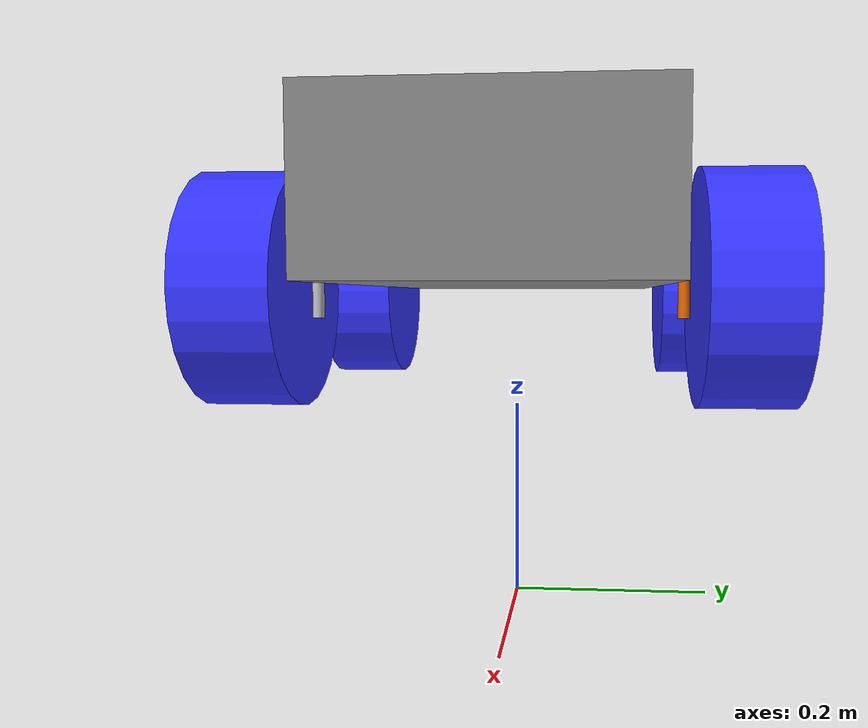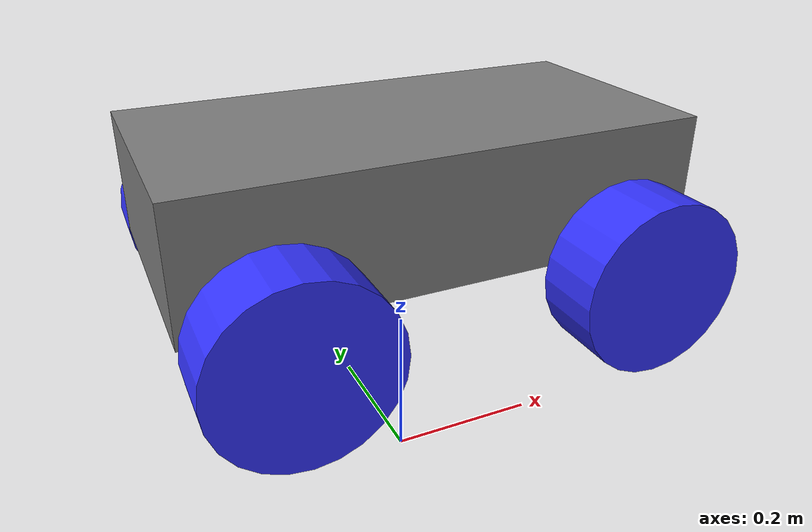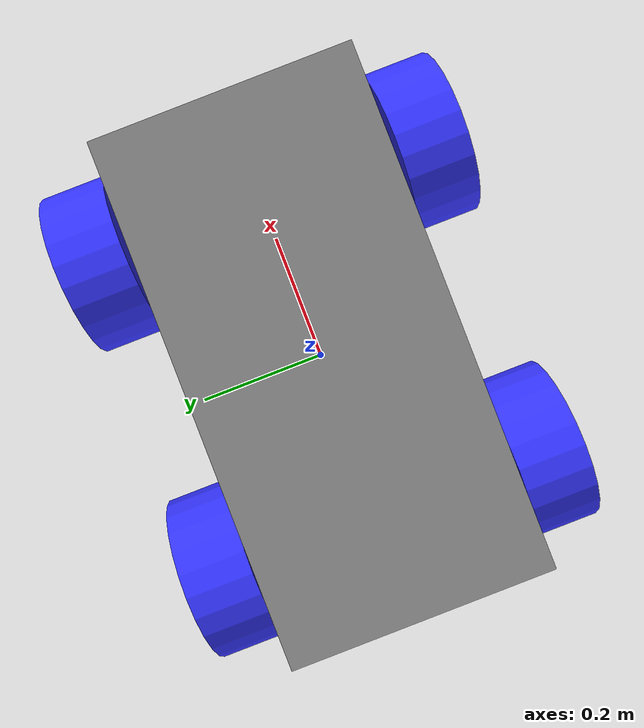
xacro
<?xml version="1.0"?>
<robot xmlns:xacro="http://www.ros.org/wiki/xacro" name="car">

    <!-- main body -->
    <xacro:include filename="car_chassis.xacro"/>

    <xacro:include filename="gazebo_control.xacro" />

</robot>

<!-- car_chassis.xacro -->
<robot xmlns:xacro="http://www.ros.org/wiki/xacro" >

    <xacro:include filename="inertial_macros.xacro"/>
    <xacro:include filename="materials.xacro"/>

    <!-- base link-->
    <link name="base_link">

    </link>
    <!-- base foot print link -->
    <joint name="base_footprint_joint" type="fixed">
        <parent link="base_link"/>
        <child link="base_footprint"/>
        <origin xyz="0 0 0" rpy="0 0 0"/>
    </joint>

    <link name="base_footprint">

    </link>

    <joint name="chassis_joint" type="fixed">
        <parent link="base_link"/>
        <child link="chassis"/>
        <origin xyz="0 0 0.4" />
    </joint>

    <!-- chassis link -->
    <link name="chassis">
        <visual>
            <origin xyz="0 0 0" />
            <geometry>
                <box size="0.6 0.3 0.15"/>
            </geometry>
            <material name="chassis" />
        </visual>

        <xacro:inertial_box mass="0.5" x="0.3" y="0.3" z="0.15">
            <origin xyz="0 0 0" rpy="0 0 0"/>
        </xacro:inertial_box>
    </link>

    <joint name="bottom_left_wheel_joint" type="continuous">
        <parent link="chassis" />
        <child link="bottom_left_wheel" />
        <origin xyz="-0.2 0.2 -0.08" rpy="-${pi/2} 0 0"/>
        <axis xyz="0 0 1"/>
    </joint>

    <!-- bottom left wheel link -->
    <link name="bottom_left_wheel">
        <visual>
            <geometry>
                <cylinder radius="0.1" length="0.08"/>
            </geometry>
            <material name="wheel"/>
        </visual>

        <collision>
            <geometry>
                <cylinder radius="0.1" length="0.08"/>
            </geometry>
        </collision>

        <xacro:inertial_cylinder mass="0.1" length="0.1" radius="0.05">
            <origin xyz="0.0 0.0 0.0" rpy="0.0 0.0 0.0"/>
        </xacro:inertial_cylinder>
    </link>

    <joint name="bottom_right_wheel_joint" type="continuous">
        <parent link="chassis" />
        <child link="bottom_right_wheel" />
        <origin xyz="-0.2 -0.2 -0.08" rpy="${pi/2} 0 0"/>
        <axis xyz="0 0 -1"/>
    </joint>

    <!-- bottom right wheel link -->
    <link name="bottom_right_wheel">
        <visual>
            <geometry>
                <cylinder radius="0.1" length="0.08"/>
            </geometry>
            <material name="wheel"/>
        </visual>

        <collision>
            <geometry>
                <cylinder radius="0.1" length="0.08"/>
            </geometry>
        </collision>

        <xacro:inertial_cylinder mass="0.1" length="0.1" radius="0.05">
            <origin xyz="0.0 0.0 0.0" rpy="0.0 0.0 0.0"/>
        </xacro:inertial_cylinder>
    </link>

    <!-- top left wheel link -->
    <joint name="top_left_steer_joint" type="revolute">
        <parent link="chassis" />
        <child link="top_left_steer_link" />
        <origin xyz="0.2 0.155 -0.08" rpy="0 0 0"/>
        <axis xyz="0.0 0.0 1.0"/>
        <limit lower="-${pi/6}" upper="${pi/6}" effort="3.0" velocity="10.0"/>
    </joint>

    <joint name="top_left_wheel_joint" type="continuous">
        <parent link="top_left_steer_link" />
        <child link="top_left_wheel" />
        <origin xyz="0 0.05 0" rpy="-${pi/2} 0 0"/>
        <axis xyz="0 0 1"/>
    </joint>

    <link name="top_left_steer_link">
        <visual>
            <geometry>
                <cylinder radius="0.005" length="0.05"/>
            </geometry>
        </visual>
        <collision>
            <geometry>
                <cylinder radius="0.005" length="0.05"/>
            </geometry>
        </collision>
        <xacro:inertial_cylinder mass="0.01" length="0.05" radius="0.05">
            <origin xyz="0.0 0.0 0.0" rpy="0.0 0.0 0.0"/>
        </xacro:inertial_cylinder>
    </link>

    <link name="top_left_wheel">
        <visual>
            <geometry>
                <cylinder radius="0.1" length="0.08"/>
            </geometry>
            <material name="wheel"/>
        </visual>

        <collision>
            <geometry>
                <cylinder radius="0.1" length="0.08"/>
            </geometry>
        </collision>

        <xacro:inertial_cylinder mass="0.1" length="0.5" radius="0.05">
            <origin xyz="0.0 0.0 0.0" rpy="0.0 0.0 0.0"/>
        </xacro:inertial_cylinder>
    </link>

    <!-- top right wheel link -->
    <joint name="top_right_steer_joint" type="revolute">
        <parent link="chassis" />
        <child link="top_right_steer_link" />
        <origin xyz="0.2 -0.155 -0.08" rpy="0 0 0"/>
        <axis xyz="0.0 0.0 1.0"/>
        <limit lower="-${pi/6}" upper="${pi/6}" effort="3.0" velocity="10.0"/>
    </joint>

    <joint name="top_right_wheel_joint" type="continuous">
        <parent link="top_right_steer_link" />
        <child link="top_right_wheel" />
        <origin xyz="0 -0.05 0" rpy="${pi/2} 0 0"/>
        <axis xyz="0 0 -1"/>
    </joint>

    <link name="top_right_steer_link">
        <visual>
            <geometry>
                <cylinder radius="0.005" length="0.05"/>
            </geometry>
        </visual>
        <collision>
            <geometry>
                <cylinder radius="0.005" length="0.05"/>
            </geometry>
        </collision>
        <xacro:inertial_cylinder mass="0.01" length="0.05" radius="0.05">
            <origin xyz="0.0 0.0 0.0" rpy="0.0 0.0 0.0"/>
        </xacro:inertial_cylinder>
    </link>

    <link name="top_right_wheel">
        <visual>
            <geometry>
                <cylinder radius="0.1" length="0.08"/>
            </geometry>
            <material name="wheel"/>
        </visual>

        <collision>
            <geometry>
                <cylinder radius="0.1" length="0.08"/>
            </geometry>
        </collision>

        <xacro:inertial_cylinder mass="0.1" length="0.5" radius="0.05">
            <origin xyz="0.0 0.0 0.0" rpy="0.0 0.0 0.0"/>
        </xacro:inertial_cylinder>
    </link>

</robot>

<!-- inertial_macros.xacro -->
<robot xmlns:xacro="http://www.ros.org/wiki/xacro">

    <xacro:macro name="inertial_sphere" params="mass radius *origin">
        <inertial>
            <xacro:insert_block name="origin"/>
            <mass value="${mass}" />
            <inertia ixx="${(2 / 5) * mass * (radius * radius)}" ixy="0" ixz="0"
                    iyy="${(2 / 5) * mass * (radius * radius)}" iyz="0"
                    izz="${(2 / 5) * mass * (radius * radius)}"/>
        </inertial>
    </xacro:macro>

    <xacro:macro name="inertial_box" params="mass x y z *origin">
        <inertial>
            <xacro:insert_block name="origin"/>
            <mass value="${mass}"/>
            <inertia ixx="${(1 / 12) * mass * (y*y + z*z)}" ixy="0" ixz="0"
                    iyy="${(1 / 12) * mass * (x*x + z*z)}" iyz="0"
                    izz="${(1 / 12) * mass * (y*y + x*x)}"/>
        </inertial>
    </xacro:macro>

    <xacro:macro name="inertial_cylinder" params="mass length radius *origin">
        <inertial>
            <xacro:insert_block name="origin"/>
            <mass value="${mass}"/>
            <inertia ixx="${(1 / 12) * mass * (3*radius*radius + length*length)}" ixy="0" ixz="0"
                    iyy="${(1 / 12) * mass * (3*radius*radius + length*length)}" iyz="0"
                    izz="${(1 / 12) * mass * (radius*radius)}"/>
        </inertial>
    </xacro:macro>

</robot>

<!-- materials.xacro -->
<robot xmlns:xacro="http://www.ros.org/wiki/xacro" >

    <!-- color materials -->
    <material name="chassis">
        <color rgba="0.5 0.5 0.5 1"/>
    </material>
    <material name="red">
        <color rgba="1 0 0 1"/>
    </material>
    <material name="wheel">
        <color rgba="0.2 0.2 1 1"/>
    </material>

    <!-- for gazebo -->
    <gazebo reference="chassis">
        <material>Gazebo/Red</material>
    </gazebo>

    <gazebo reference="top_left_wheel">
        <material>Gazebo/Black</material>
    </gazebo>

    <gazebo reference="top_right_wheel">
        <material>Gazebo/Black</material>
    </gazebo>

    <gazebo reference="bottom_left_wheel">
        <material>Gazebo/Black</material>
    </gazebo>

    <gazebo reference="bottom_right_wheel">
        <material>Gazebo/Black</material>
    </gazebo>

</robot>
